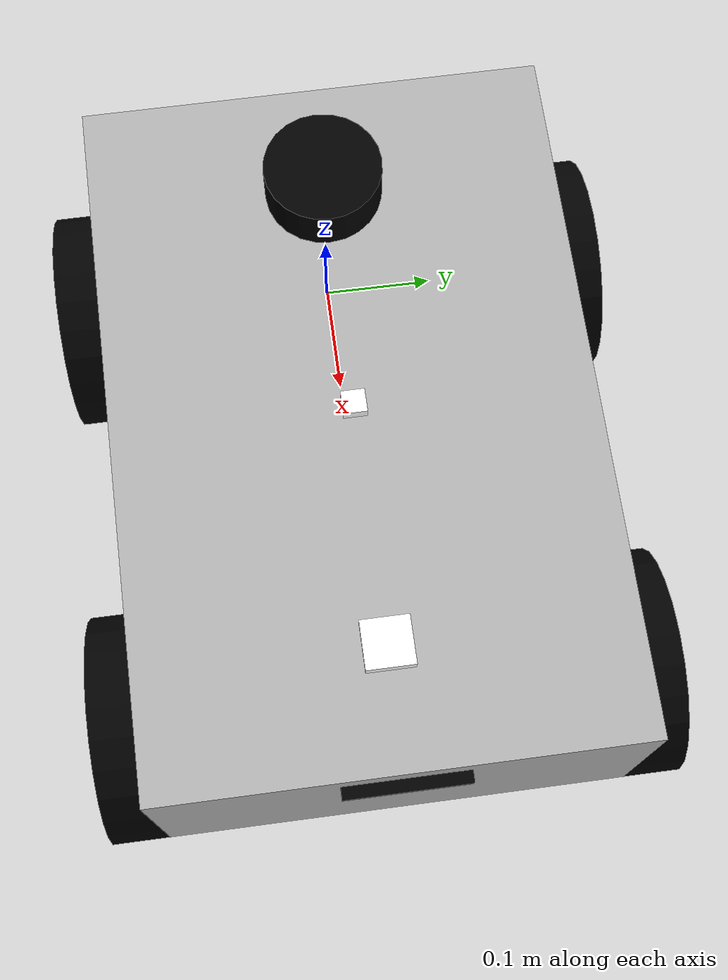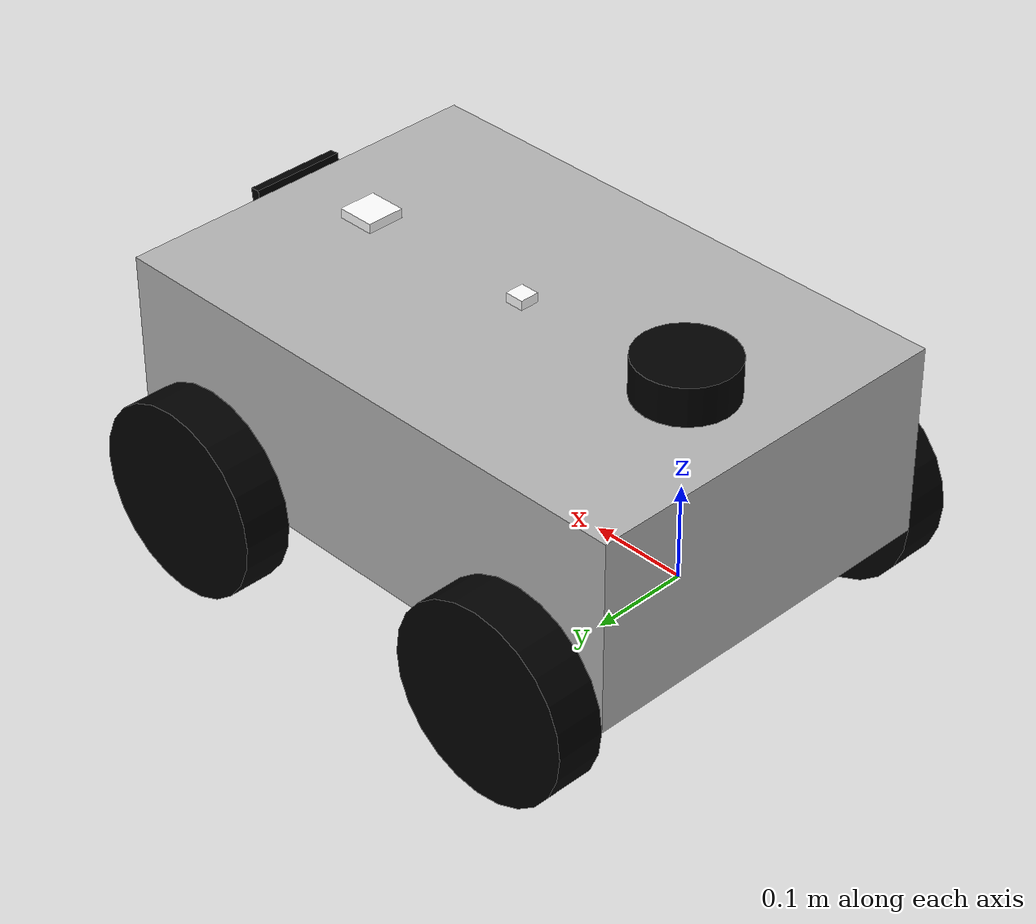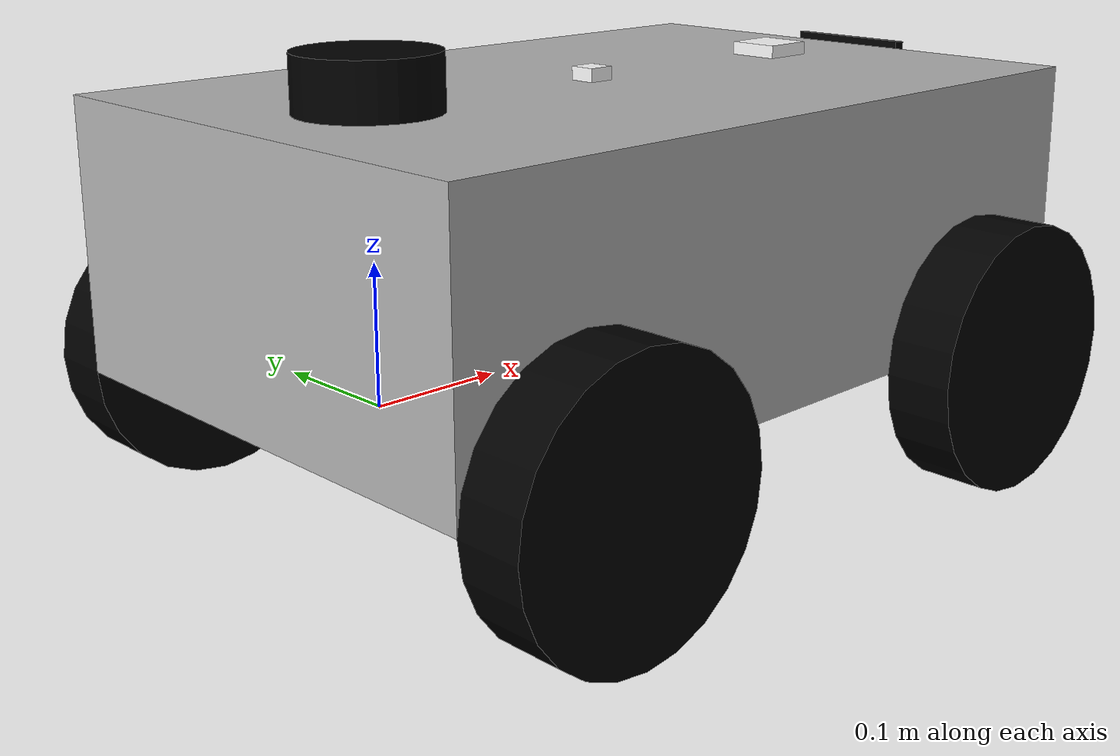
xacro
<?xml version="1.0"?>
<robot xmlns:xacro="http://www.ros.org/wiki/xacro"  name="robot">

    <xacro:include filename="robot_core.xacro" />
    <xacro:include filename="gazebo_control.xacro" />
    <xacro:include filename="lidar.xacro" />
    <xacro:include filename="imu.xacro"/>
    <xacro:include filename="gps.xacro"/>
    <xacro:include filename="depth_camera.xacro" />

</robot>

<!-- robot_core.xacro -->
<robot xmlns:xacro="http://www.ros.org/wiki/xacro">

    <xacro:include filename="inertial_macros.xacro"/>

    <material name="grey">
        <color rgba="0.7 0.7 0.7 1.0"/>
    </material>

    <material name="black">
        <color rgba="0 0 0 1.0"/>
    </material>

    <material name="green">
        <color rgba="0 0.6 0 1.0"/>
    </material>

    <material name="blue">
        <color rgba="0 0.0 0.7 1.0"/>
    </material>

    <material name="red">
        <color rgba="0.6 0.0 0 1.0"/>
    </material>

    <material name="white">
        <color rgba="1 1 1 1.0"/>
    </material>

    <!-- BASE LINK -->

    <link name="base_link">
    </link>
    <!-- CHASSIS LINK -->
    <link name="chassis_link">
        <visual>
            <geometry>
                <box size="0.6 0.4 0.2"/>
            </geometry>
            <origin xyz="0.3 0.0 0.1" rpy="0.0 0.0 0.0"/>
            <material name="grey"/>
        </visual>
        <collision>
            <geometry>
                <box size="0.6 0.4 0.2"/>
            </geometry>
            <origin xyz="0.3 0.0 0.1" rpy="0.0 0.0 0.0"/>
        </collision>
        <xacro:inertial_box mass="0.75" x="0.6" y="0.4" z="0.2">
            <origin xyz="0.3 0.0 0.1" rpy="0.0 0.0 0.0"/>
        </xacro:inertial_box>
    </link>
    <gazebo reference="chassis_link">
        <mu1>0.2</mu1>
        <mu2>0.2</mu2>
        <material>Gazebo/Grey</material>
    </gazebo>
    <joint name="chassis_joint" type="fixed">
        <parent link="base_link"/>
        <child link="chassis_link"/>
        <origin xyz="-0.1 0.0 0.0" rpy="0.0 0.0 0.0"/>
    </joint>
    <!-- LEFT WHEEL(BACK)-->
    <link name="left_back_wheel">
        <visual>
            <origin xyz="0.0 0.0 0.0" rpy="0.0 0.0 0.0"/>
            <geometry>
                <cylinder radius="0.1" length="0.05"/>
            </geometry>
            <material name="black"/>
        </visual>
        <collision>
            <origin xyz="0.0 0.0 0.0" rpy="0.0 0.0 0.0"/>
            <geometry>
                <cylinder radius="0.1" length="0.05"/>
            </geometry>
        </collision>
        <xacro:inertial_cylinder mass="0.2" radius="0.1" length="0.05">
            <origin xyz="0.0 0.0 0.0" rpy="0.0 0.0 0.0"/>
        </xacro:inertial_cylinder>
    </link>
    <gazebo reference="left_back_wheel">
        <mu1>0.2</mu1>
        <mu2>0.2</mu2>
        <material>Gazebo/Black</material>
    </gazebo>
    <joint name="left_back_wheel_joint" type="continuous">
        <origin xyz="0.0 0.225 0.0" rpy="-1.5707963267948966 0.0 0.0"/>
        <parent link="base_link"/>
        <child link="left_back_wheel"/>
        <axis xyz="0.0 0.0 1.0"/>
    </joint>

    <!-- RIGHT WHEEL(BACK)-->
    <link name="right_back_wheel">
        <visual>
            <origin xyz="0.0 0.0 0.0" rpy="0.0 0.0 0.0"/>
            <geometry>
                <cylinder radius="0.1" length="0.05"/>
            </geometry>
            <material name="black"/>
        </visual>
        <collision>
            <origin xyz="0.0 0.0 0.0" rpy="0.0 0.0 0.0"/>
            <geometry>
                <cylinder radius="0.1" length="0.05"/>
            </geometry>
        </collision>
        <xacro:inertial_cylinder mass="0.2" radius="0.1" length="0.05">
            <origin xyz="0.0 0.0 0.0" rpy="0.0 0.0 0.0"/>
        </xacro:inertial_cylinder>
    </link>
    <gazebo reference="right_back_wheel">
        <mu1>0.2</mu1>
        <mu2>0.2</mu2>
        <material>Gazebo/Black</material>
    </gazebo>
    <joint name="right_back_wheel_joint" type="continuous">
        <origin xyz="0.0 -0.225 0.0" rpy="1.5707963267948966 0.0 0.0"/>
        <parent link="base_link"/>
        <child link="right_back_wheel"/>
        <axis xyz="0.0 0.0 -1.0"/>
    </joint>
    <!-- LEFT WHEEL(FRONT)-->
    <link name="left_front_wheel">
        <visual>
            <origin xyz="0.0 0.0 0.0" rpy="0.0 0.0 0.0"/>
            <geometry>
                <cylinder radius="0.1" length="0.05"/>
            </geometry>
            <material name="black"/>
        </visual>
        <collision>
            <origin xyz="0.0 0.0 0.0" rpy="0.0 0.0 0.0"/>
            <geometry>
                <cylinder radius="0.1" length="0.05"/>
            </geometry>
        </collision>
        <xacro:inertial_cylinder mass="0.2" radius="0.1" length="0.05">
            <origin xyz="0.0 0.0 0.0" rpy="0.0 0.0 0.0"/>
        </xacro:inertial_cylinder>
    </link>
    <gazebo reference="left_front_wheel">
        <mu1>0.2</mu1>
        <mu2>0.2</mu2>
        <material>Gazebo/Black</material>
    </gazebo>
    <joint name="left_front_wheel_joint" type="continuous">
        <origin xyz="0.4 0.225 0.0" rpy="-1.5707963267948966 0.0 0.0"/>
        <parent link="base_link"/>
        <child link="left_front_wheel"/>
        <axis xyz="0.0 0.0 1.0"/>
    </joint>

    <!-- RIGHT WHEEL(FRONT)-->
    <link name="right_front_wheel">
        <visual>
            <origin xyz="0.0 0.0 0.0" rpy="0.0 0.0 0.0"/>
            <geometry>
                <cylinder radius="0.1" length="0.05"/>
            </geometry>
            <material name="black"/>
        </visual>
        <collision>
            <origin xyz="0.0 0.0 0.0" rpy="0.0 0.0 0.0"/>
            <geometry>
                <cylinder radius="0.1" length="0.05"/>
            </geometry>
        </collision>
        <xacro:inertial_cylinder mass="0.2" radius="0.1" length="0.05">
            <origin xyz="0.0 0.0 0.0" rpy="0.0 0.0 0.0"/>
        </xacro:inertial_cylinder>
    </link>
    <gazebo reference="right_front_wheel">
        <mu1>0.2</mu1>
        <mu2>0.2</mu2>
        <material>Gazebo/Black</material>
    </gazebo>
    <joint name="right_front_wheel_joint" type="continuous">
        <origin xyz="0.4 -0.225 0.0" rpy="1.5707963267948966 0.0 0.0"/>
        <parent link="base_link"/>
        <child link="right_front_wheel"/>
        <axis xyz="0.0 0.0 -1.0"/>
    </joint>
</robot>

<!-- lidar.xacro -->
<robot xmlns:xacro="http://www.ros.org/wiki/xacro" >

    <joint name="laser_joint" type="fixed">
        <parent link="chassis_link"/>
        <child link="laser_frame"/>
        <origin xyz="0.1 0 0.220" rpy="0 0 0"/>
    </joint>

    <link name="laser_frame">
        <visual>
            <geometry>
                <cylinder radius="0.05" length="0.04"/>
            </geometry>
            <material name="black"/>
        </visual>
        <collision>
            <geometry>
                <cylinder radius="0.05" length="0.04"/>
            </geometry>
        </collision>
        <xacro:inertial_cylinder mass="0.1" length="0.04" radius="0.05">
            <origin xyz="0 0 0" rpy="0 0 0"/>
        </xacro:inertial_cylinder>
    </link>

    <gazebo reference="laser_frame">
        <material>Gazebo/Black</material>

        <sensor name="laser" type="ray">
            <pose> 0 0 0 0 0 0 </pose>
            <visualize>false</visualize>
            <update_rate>10</update_rate>
            <ray>
                <scan>
                    <horizontal>
                        <samples>360</samples>
                        <min_angle>-3.14</min_angle>
                        <max_angle>3.14</max_angle>
                    </horizontal>
                </scan>
                <range>
                    <min>0.3</min>
                    <max>12</max>
                </range>
            </ray>
            <plugin name="laser_controller" filename="libgazebo_ros_ray_sensor.so">
                <ros>
                    <argument>~/out:=scan</argument>
                </ros>
                <output_type>sensor_msgs/LaserScan</output_type>
                <frame_name>laser_frame</frame_name>
            </plugin>
        </sensor>
    </gazebo>

</robot>

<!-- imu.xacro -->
<robot xmlns:xacro="http://www.ros.org/wiki/xacro">

    <joint name="imu_joint" type="fixed">
        <parent link="chassis_link"/>
        <child link="imu_link"/>
        <origin xyz="0.3 0 0.205" rpy="0 0 0"/>
    </joint>

    <link name="imu_link">
        <visual>
            <origin xyz="0.0 0.0 0.0" rpy="0.0 0.0 0.0"/>
            <geometry>
                <box size="0.020 0.02 0.010"/>
            </geometry>
            <material name="white"/>
        </visual>
        <collision>
            <geometry>
                <box size="0.020 0.02 0.010"/>
            </geometry>
        </collision>
        <xacro:inertial_box mass="0.1" x="0.02" y="0.02" z="0.01">
            <origin xyz="0 0 0" rpy="0 0 0"/>
        </xacro:inertial_box>
    </link>
  <gazebo reference="imu_link">
    <material>Gazebo/White</material>
    <gravity>true</gravity>
    <sensor name="imu_sensor" type="imu">
      <always_on>true</always_on>
      <update_rate>100</update_rate>
      <visualize>true</visualize>
      <topic>__default_topic__</topic>
      <plugin filename="libgazebo_ros_imu_sensor.so" name="imu_plugin">
        <topic>imu</topic>
        <bodyName>imu_link</bodyName>
        <updateRateHZ>10.0</updateRateHZ>
        <gaussianNoise>0.0</gaussianNoise>
        <xyzOffset>0 0 0</xyzOffset>
        <rpyOffset>0 0 0</rpyOffset>
        <frameName>imu_link</frameName>
        <initialOrientationAsReference>false</initialOrientationAsReference>
      </plugin>
      <pose>0 0 0 0 0 0</pose>
    </sensor>
  </gazebo>
</robot>

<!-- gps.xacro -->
<robot xmlns:xacro="http://www.ros.org/wiki/xacro">

    <joint name="gps_joint" type="fixed">
        <parent link="chassis_link"/>
        <child link="gps_link"/>
        <origin xyz="0.5 0 0.205" rpy="0 0 0"/>
    </joint>

    <link name="gps_link">
        <visual>
            <origin xyz="0.0 0.0 0.0" rpy="0.0 0.0 0.0"/>
            <geometry>
                <box size="0.040 0.04 0.010"/>
            </geometry>
            <material name="white"/>
        </visual>
        <collision>
            <geometry>
                <box size="0.020 0.02 0.010"/>
            </geometry>
        </collision>
        <xacro:inertial_box mass="0.1" x="0.02" y="0.02" z="0.01">
            <origin xyz="0 0 0" rpy="0 0 0"/>
        </xacro:inertial_box>
    </link>
  <gazebo reference="gps_link">
    <material>Gazebo/White</material>
    <gravity>true</gravity>
    <sensor name="my_gps" type="gps">
        <!-- ensure the sensor is active (required) -->
        <always_on>true</always_on>
        <update_rate>30</update_rate>
        <plugin name="my_gps_plugin" filename="libgazebo_ros_gps_sensor.so">
        <ros>
            <!-- publish to /gps/data -->
            <namespace>/gps</namespace>
            <remapping>~/out:=data</remapping>
        </ros>
        </plugin>
    </sensor>
  </gazebo>
</robot>

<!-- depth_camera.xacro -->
<robot xmlns:xacro="http://www.ros.org/wiki/xacro" >

    <joint name="camera_joint" type="fixed">
        <parent link="chassis_link"/>
        <child link="camera_link"/>
        <origin xyz="0.6075 0 0.195" rpy="0 0.10 0"/>
    </joint>

    <link name="camera_link">
        <visual>
            <geometry>
                <box size="0.010 0.1 0.020"/>
            </geometry>
            <material name="black"/>
        </visual>
    </link>

    <joint name="camera_optical_joint" type="fixed">
        <parent link="camera_link"/>
        <child link="camera_link_optical"/>
        <origin xyz="0 0 0" rpy="${-pi/2} 0 ${-pi/2}"/>
    </joint>

    <link name="camera_link_optical"></link>

    <gazebo reference="camera_link">
        <material>Gazebo/Black</material>

        <sensor name="camera" type="depth">
            <pose> 0 0 0 0 0 0 </pose>
            <visualize>true</visualize>
            <update_rate>10</update_rate>
            <camera>
                <horizontal_fov>1.089</horizontal_fov>
                <image>
                    <format>B8G8R8</format>
                    <width>640</width>
                    <height>480</height>
                </image>
                <clip>
                    <near>0.05</near>
                    <far>8.0</far>
                </clip>
            </camera>
            <plugin name="camera_controller" filename="libgazebo_ros_camera.so">
                <frame_name>camera_link_optical</frame_name>
                <min_depth>0.1</min_depth>
                <max_depth>100.0</max_depth>
            </plugin>
        </sensor>
    </gazebo>

</robot>
